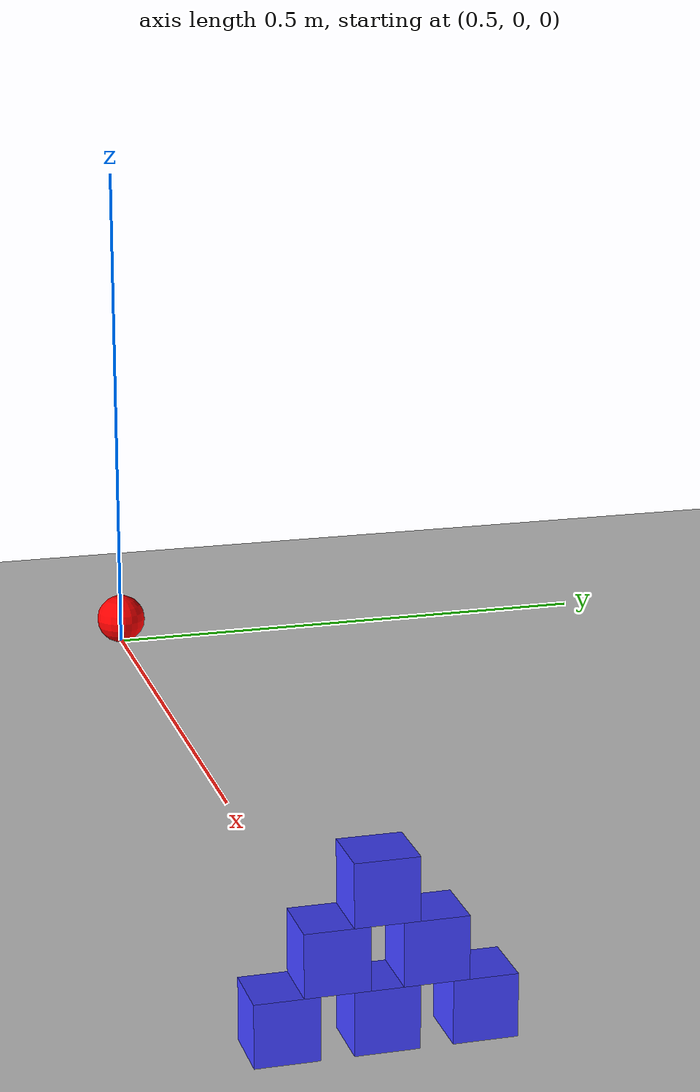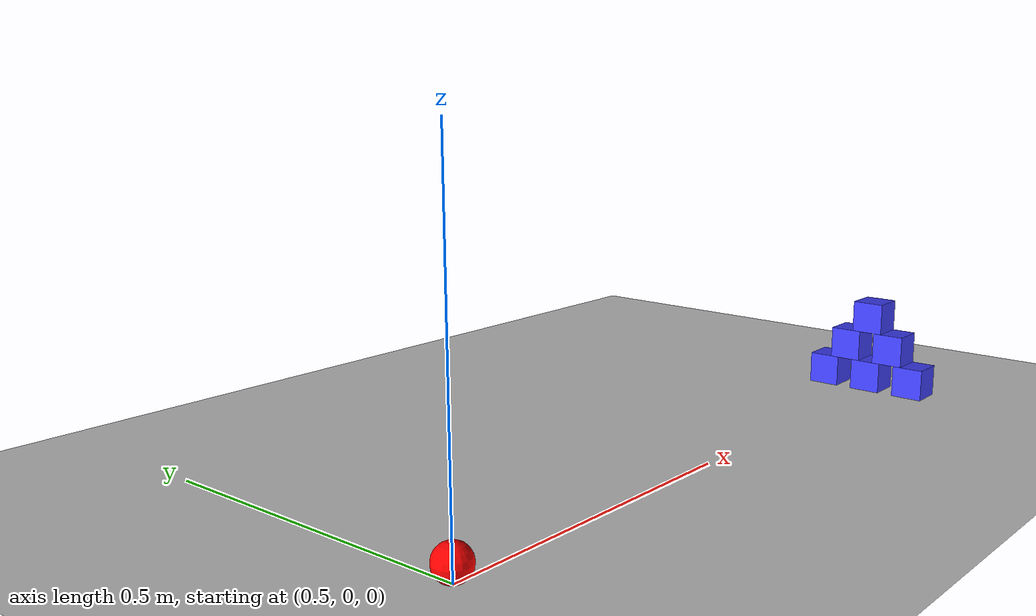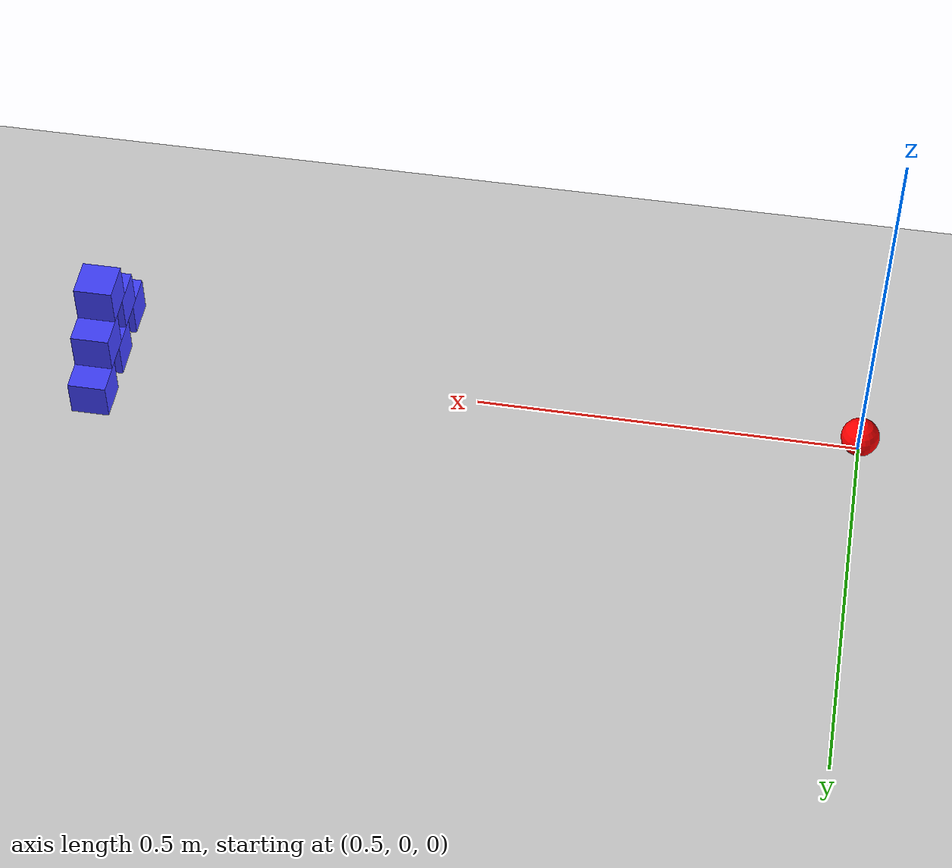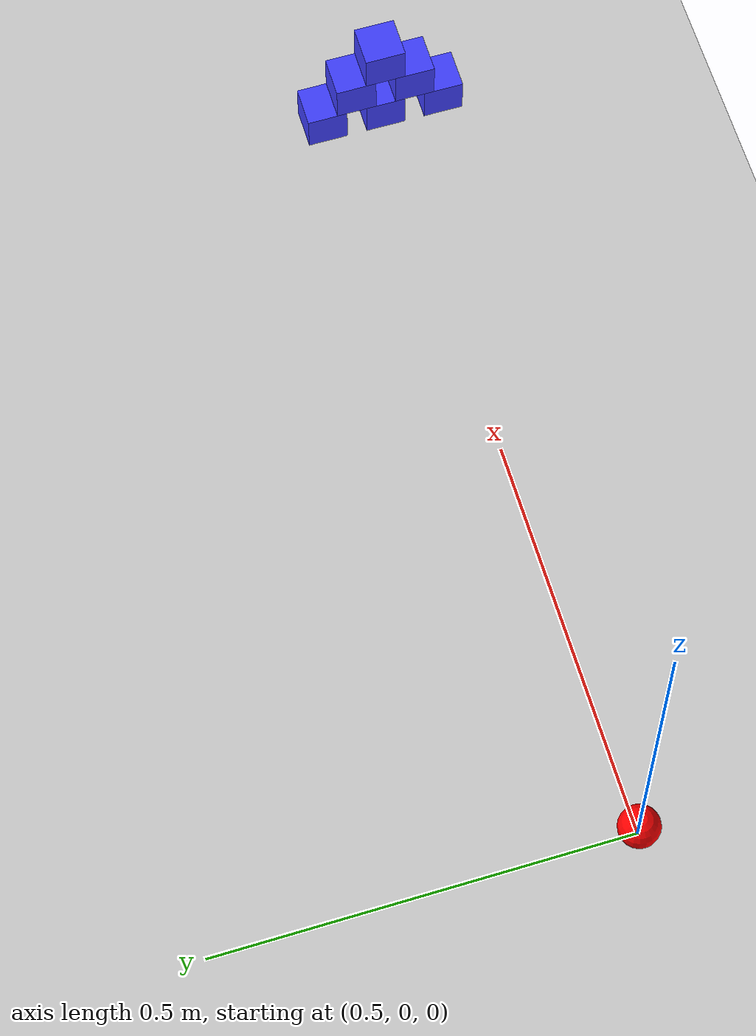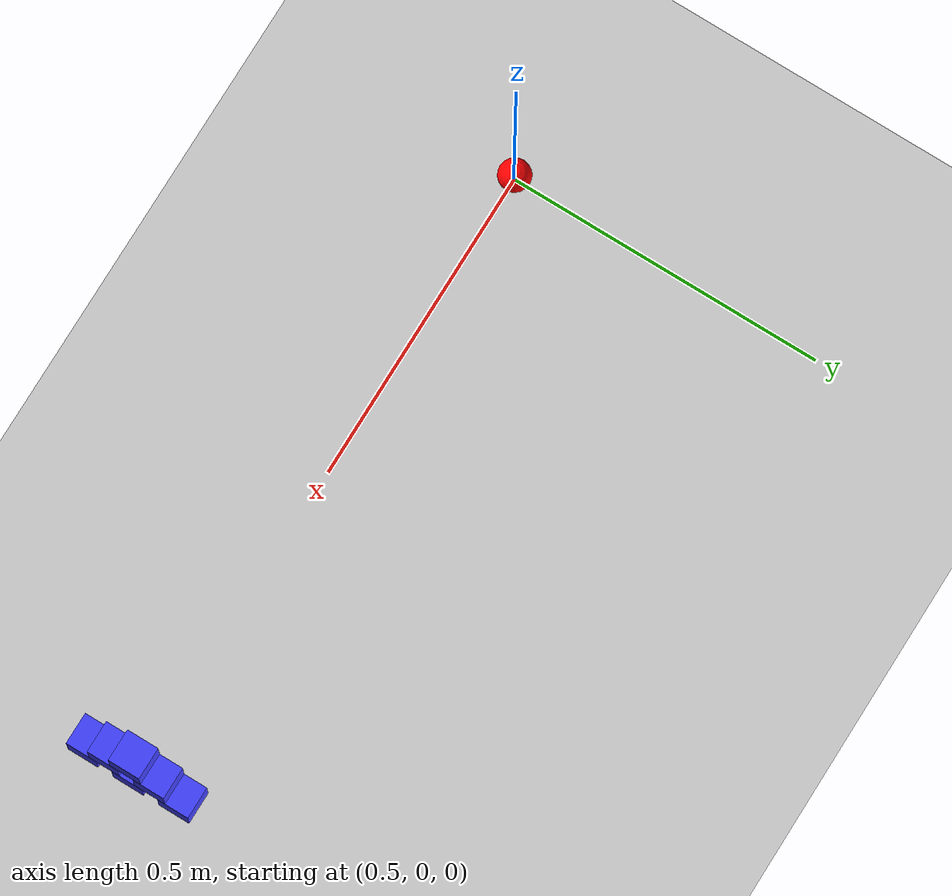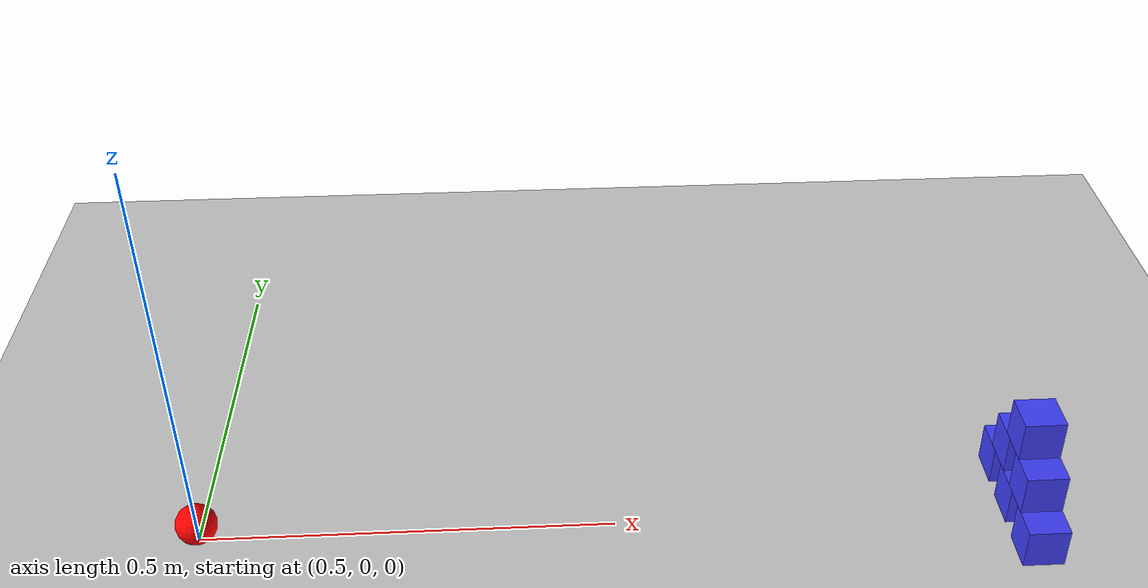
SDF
<?xml version="1.0" ?>
<sdf version='1.7'>
    <world name='empty'>
        <plugin filename="ignition-gazebo-physics-system" name="ignition::gazebo::systems::Physics">
            <engine>
                <filename>ignition-physics-dartsim-plugin</filename>
            </engine>
        </plugin>
        <plugin name='ignition::gazebo::systems::SceneBroadcaster' filename='ignition-gazebo-scene-broadcaster-system' />
        <plugin name='ignition::gazebo::systems::UserCommands' filename='ignition-gazebo-user-commands-system' />
        <plugin name='ignition::gazebo::systems::Contact' filename='ignition-gazebo-contact-system' />
        <gui fullscreen='0'>
            <plugin name='3D View' filename='GzScene3D'>
                <ignition-gui>
                    <title>3D View</title>
                    <property type='bool' key='showTitleBar'>0</property>
                    <property type='bool' key='resizable'>0</property>
                    <property type='double' key='z'>0</property>
                    <anchor line='right' target='window' target_line='right' />
                    <anchor line='left' target='window' target_line='left' />
                    <anchor line='top' target='window' target_line='top' />
                    <anchor line='bottom' target='window' target_line='bottom' />
                </ignition-gui>
                <engine>ogre2</engine>
                <scene>scene</scene>
                <background_color>0.8 0.8 0.8 1.0</background_color>
                <camera_pose>0.5 -1.1 1.8 0 0.78539816 1.5707963</camera_pose>
            </plugin>
            <plugin name='World control' filename='WorldControl'>
                <ignition-gui>
                    <title>World control</title>
                    <property type='bool' key='showTitleBar'>0</property>
                    <property type='bool' key='resizable'>0</property>
                    <property type='double' key='height'>72</property>
                    <property type='double' key='width'>121</property>
                    <property type='double' key='z'>1</property>
                    <anchor line='left' target='window' target_line='left' />
                    <anchor line='bottom' target='window' target_line='bottom' />
                </ignition-gui>
                <play_pause>1</play_pause>
                <step>1</step>
                <start_paused>0</start_paused>
            </plugin>
        </gui>
        <light type="directional" name="sun">
            <cast_shadows>true</cast_shadows>
            <pose>0 0 10 0 0 0</pose>
            <diffuse>0.8 0.8 0.8 1</diffuse>
            <specular>0.2 0.2 0.2 1</specular>
            <attenuation>
                <range>1000</range>
                <constant>0.9</constant>
                <linear>0.01</linear>
                <quadratic>0.001</quadratic>
            </attenuation>
            <direction>-0.5 0.1 -0.9</direction>
        </light>

        <scene>
            <ambient>0.4 0.4 0.4 1</ambient>
            <grid>false</grid>
        </scene>
        <physics name="default_physics" type="dart">
            <max_step_size>0.0025</max_step_size>
            <real_time_factor>1.0</real_time_factor>
        </physics>

        <model name="ground_plane">
            <pose>0.5 0 0 0 0 0</pose>
            <static>true</static>
            <link name="ground_plane_link">
                <collision name="ground_plane_collision">
                    <pose>0 0 -0.05 0 0 0</pose>
                    <geometry>
                        <box>
                            <size>5 2 0.1</size>
                        </box>
                    </geometry>
                </collision>
                <visual name="ground_plane_visual">
                    <geometry>
                        <plane>
                            <normal>0 0 1</normal>
                            <size>5 2</size>
                        </plane>
                    </geometry>
                    <material>
                        <ambient>0.8 0.8 0.8 1</ambient>
                        <diffuse>0.8 0.8 0.8 1</diffuse>
                        <specular>0.8 0.8 0.8 1</specular>
                    </material>
                </visual>
            </link>
        </model>

        <!-- Box to throw -->
        <model name="throwing_object">
            <pose>0.5 0 0.025 0 0 0</pose>
            <link name="throwing_object_link">
                <inertial>
                    <inertia>
                        <ixx>0.00025</ixx>
                        <ixy>0.0</ixy>
                        <ixz>0.0</ixz>
                        <iyy>0.00025</iyy>
                        <iyz>0.0</iyz>
                        <izz>0.00025</izz>
                    </inertia>
                    <mass>0.6</mass>
                </inertial>
                <collision name="throwing_object_collision">
                    <geometry>
                        <sphere>
                            <radius>0.025</radius>
                        </sphere>
                    </geometry>
                </collision>
                <visual name="throwing_object_visual">
                    <geometry>
                        <sphere>
                            <radius>0.025</radius>
                        </sphere>
                    </geometry>
                    <material>
                        <ambient>1 0 0 1</ambient>
                        <diffuse>1 0 0 1</diffuse>
                        <specular>1 0 0 1</specular>
                    </material>
                </visual>
            </link>

            <!-- Pose publisher, used to determine grasp pose -->
            <plugin filename="ignition-gazebo-pose-publisher-system" name="ignition::gazebo::systems::PosePublisher">
                <publish_nested_model_pose>true</publish_nested_model_pose>
                <publish_link_pose>false</publish_link_pose>
                <publish_collision_pose>false</publish_collision_pose>
                <publish_visual_pose>false</publish_visual_pose>
            </plugin>
        </model>

        <!-- Other boxes, that the first box is thrown onto -->
        <model name="pyramid_box1">
            <pose>1.5 -0.075 0.025 0 0 0</pose>
            <link name="pyramid_box1_link">
                <inertial>
                    <inertia>
                        <ixx>0.00005</ixx>
                        <ixy>0.0</ixy>
                        <ixz>0.0</ixz>
                        <iyy>0.00005</iyy>
                        <iyz>0.0</iyz>
                        <izz>0.00005</izz>
                    </inertia>
                    <mass>0.12</mass>
                </inertial>
                <collision name="pyramid_box1_collision">
                    <geometry>
                        <box>
                            <size>0.05 0.05 0.05</size>
                        </box>
                    </geometry>
                </collision>
                <visual name="pyramid_box1_visual">
                    <geometry>
                        <box>
                            <size>0.05 0.05 0.05</size>
                        </box>
                    </geometry>
                    <material>
                        <ambient>0.25 0.25 1 1</ambient>
                        <diffuse>0.25 0.25 1 1</diffuse>
                        <specular>0.25 0.25 1 1</specular>
                    </material>
                </visual>
            </link>
        </model>

        <model name="pyramid_box2">
            <pose>1.5 0 0.025 0 0 0</pose>
            <link name="pyramid_box2_link">
                <inertial>
                    <inertia>
                        <ixx>0.00005</ixx>
                        <ixy>0.0</ixy>
                        <ixz>0.0</ixz>
                        <iyy>0.00005</iyy>
                        <iyz>0.0</iyz>
                        <izz>0.00005</izz>
                    </inertia>
                    <mass>0.12</mass>
                </inertial>
                <collision name="pyramid_box2_collision">
                    <geometry>
                        <box>
                            <size>0.05 0.05 0.05</size>
                        </box>
                    </geometry>

                </collision>
                <visual name="pyramid_box2_visual">
                    <geometry>
                        <box>
                            <size>0.05 0.05 0.05</size>
                        </box>
                    </geometry>
                    <material>
                        <ambient>0.25 0.25 1 1</ambient>
                        <diffuse>0.25 0.25 1 1</diffuse>
                        <specular>0.25 0.25 1 1</specular>
                    </material>
                </visual>
            </link>
        </model>

        <model name="pyramid_box3">
            <pose>1.5 0.075 0.025 0 0 0</pose>
            <link name="pyramid_box3_link">
                <inertial>
                    <inertia>
                        <ixx>0.00005</ixx>
                        <ixy>0.0</ixy>
                        <ixz>0.0</ixz>
                        <iyy>0.00005</iyy>
                        <iyz>0.0</iyz>
                        <izz>0.00005</izz>
                    </inertia>
                    <mass>0.12</mass>
                </inertial>
                <collision name="pyramid_box3_collision">
                    <geometry>
                        <box>
                            <size>0.05 0.05 0.05</size>
                        </box>
                    </geometry>

                </collision>
                <visual name="pyramid_box3_visual">
                    <geometry>
                        <box>
                            <size>0.05 0.05 0.05</size>
                        </box>
                    </geometry>
                    <material>
                        <ambient>0.25 0.25 1 1</ambient>
                        <diffuse>0.25 0.25 1 1</diffuse>
                        <specular>0.25 0.25 1 1</specular>
                    </material>
                </visual>
            </link>
        </model>

        <model name="pyramid_box4">
            <pose>1.5 -0.0375 0.075 0 0 0</pose>
            <link name="pyramid_box4_link">
                <inertial>
                    <inertia>
                        <ixx>0.00005</ixx>
                        <ixy>0.0</ixy>
                        <ixz>0.0</ixz>
                        <iyy>0.00005</iyy>
                        <iyz>0.0</iyz>
                        <izz>0.00005</izz>
                    </inertia>
                    <mass>0.12</mass>
                </inertial>
                <collision name="pyramid_box4_collision">
                    <geometry>
                        <box>
                            <size>0.05 0.05 0.05</size>
                        </box>
                    </geometry>

                </collision>
                <visual name="pyramid_box4_visual">
                    <geometry>
                        <box>
                            <size>0.05 0.05 0.05</size>
                        </box>
                    </geometry>
                    <material>
                        <ambient>0.25 0.25 1 1</ambient>
                        <diffuse>0.25 0.25 1 1</diffuse>
                        <specular>0.25 0.25 1 1</specular>
                    </material>
                </visual>
            </link>
        </model>

        <model name="pyramid_box5">
            <pose>1.5 0.0375 0.075 0 0 0</pose>
            <link name="pyramid_box5_link">
                <inertial>
                    <inertia>
                        <ixx>0.00005</ixx>
                        <ixy>0.0</ixy>
                        <ixz>0.0</ixz>
                        <iyy>0.00005</iyy>
                        <iyz>0.0</iyz>
                        <izz>0.00005</izz>
                    </inertia>
                    <mass>0.12</mass>
                </inertial>
                <collision name="pyramid_box5_collision">
                    <geometry>
                        <box>
                            <size>0.05 0.05 0.05</size>
                        </box>
                    </geometry>

                </collision>
                <visual name="pyramid_box5_visual">
                    <geometry>
                        <box>
                            <size>0.05 0.05 0.05</size>
                        </box>
                    </geometry>
                    <material>
                        <ambient>0.25 0.25 1 1</ambient>
                        <diffuse>0.25 0.25 1 1</diffuse>
                        <specular>0.25 0.25 1 1</specular>
                    </material>
                </visual>
            </link>
        </model>

        <model name="pyramid_box6">
            <pose>1.5 0 0.125 0 0 0</pose>
            <link name="pyramid_box6_link">
                <inertial>
                    <inertia>
                        <ixx>0.00005</ixx>
                        <ixy>0.0</ixy>
                        <ixz>0.0</ixz>
                        <iyy>0.00005</iyy>
                        <iyz>0.0</iyz>
                        <izz>0.00005</izz>
                    </inertia>
                    <mass>0.12</mass>
                </inertial>
                <collision name="pyramid_box6_collision">
                    <geometry>
                        <box>
                            <size>0.05 0.05 0.05</size>
                        </box>
                    </geometry>

                </collision>
                <visual name="pyramid_box6_visual">
                    <geometry>
                        <box>
                            <size>0.05 0.05 0.05</size>
                        </box>
                    </geometry>
                    <material>
                        <ambient>0.25 0.25 1 1</ambient>
                        <diffuse>0.25 0.25 1 1</diffuse>
                        <specular>0.25 0.25 1 1</specular>
                    </material>
                </visual>
            </link>
        </model>
    </world>
</sdf>
